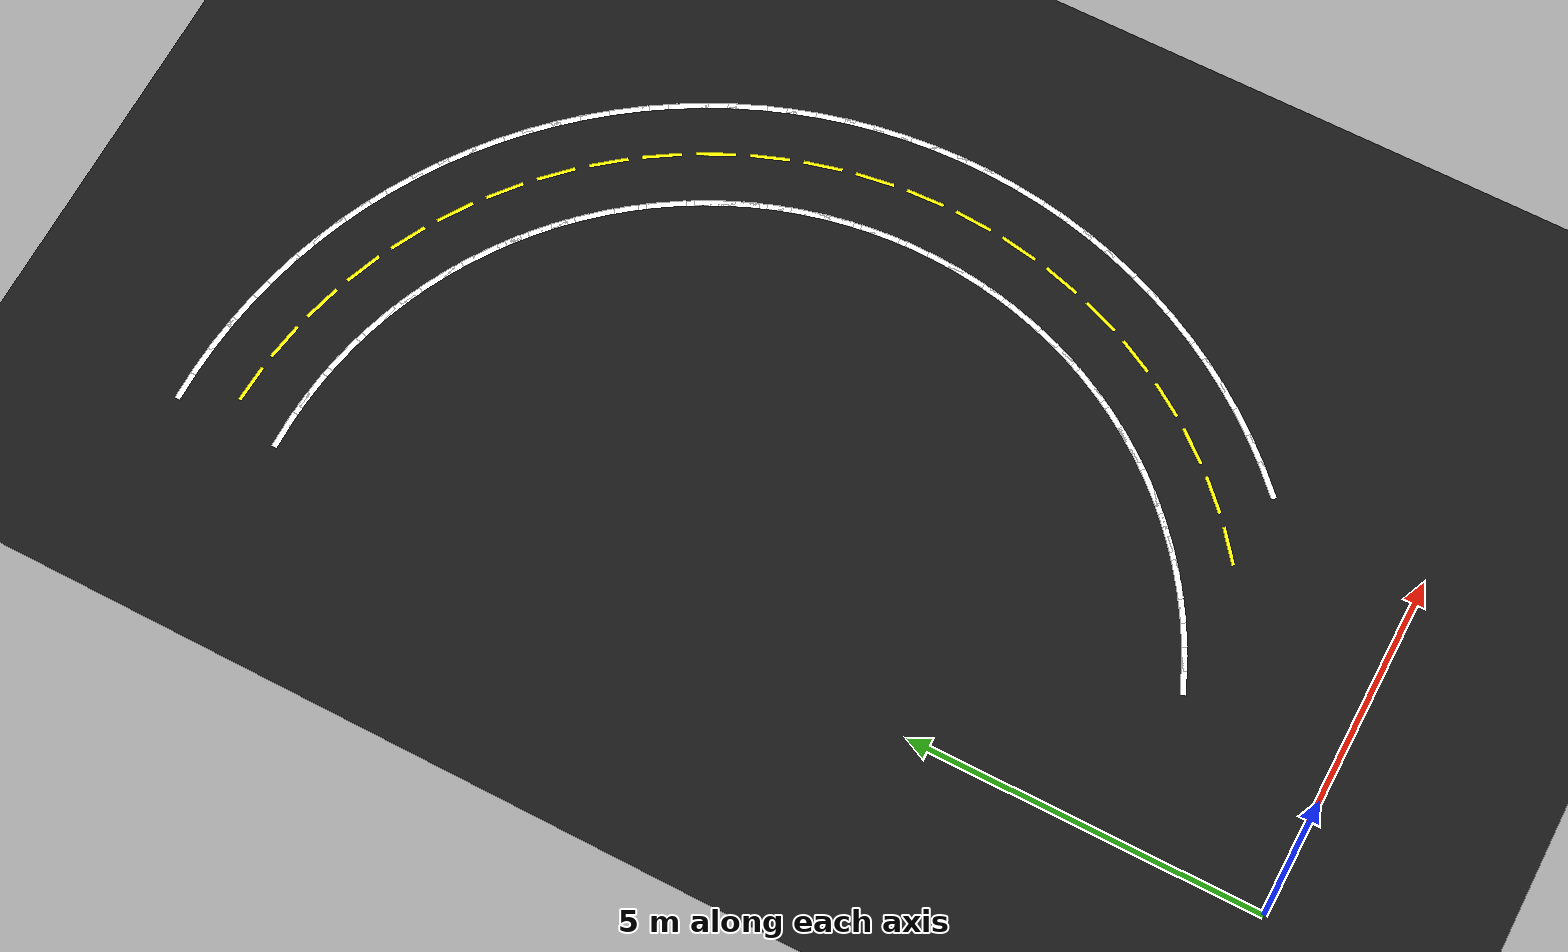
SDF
<sdf version="1.6">
 <world name="lane_world">
  <model name="ground">
   <static>true</static>
   <link name="link">
    <visual name="v">
     <geometry><plane><normal>0 0 1</normal><size>80 80</size></plane></geometry>
     <material><ambient>0.10 0.10 0.10 1</ambient><diffuse>0.10 0.10 0.10 1</diffuse></material>
    </visual>
    <collision name="c"><geometry><plane><normal>0 0 1</normal><size>80 80</size></plane></geometry></collision>
   </link>
  </model>
  <model name="seg_0019">
   <static>true</static>
   <pose>2.4108 2.2337 0.002 0 0 -2.7456</pose>
   <link name="link">
    <visual name="v">
     <geometry><box><size>0.550 0.080 0.0020</size></box></geometry>
     <material><ambient>1 1 1 1</ambient><diffuse>1 1 1 1</diffuse></material>
    </visual>
   </link>
  </model>
  <model name="seg_0021">
   <static>true</static>
   <pose>2.7118 2.3689 0.002 0 0 -2.6928</pose>
   <link name="link">
    <visual name="v">
     <geometry><box><size>0.550 0.080 0.0020</size></box></geometry>
     <material><ambient>1 1 1 1</ambient><diffuse>1 1 1 1</diffuse></material>
    </visual>
   </link>
  </model>
  <model name="seg_0024">
   <static>true</static>
   <pose>3.0052 2.5199 0.002 0 0 -2.6400</pose>
   <link name="link">
    <visual name="v">
     <geometry><box><size>0.550 0.080 0.0020</size></box></geometry>
     <material><ambient>1 1 1 1</ambient><diffuse>1 1 1 1</diffuse></material>
    </visual>
   </link>
  </model>
  <model name="seg_0026">
   <static>true</static>
   <pose>3.2902 2.6861 0.002 0 0 -2.5872</pose>
   <link name="link">
    <visual name="v">
     <geometry><box><size>0.550 0.080 0.0020</size></box></geometry>
     <material><ambient>1 1 1 1</ambient><diffuse>1 1 1 1</diffuse></material>
    </visual>
   </link>
  </model>
  <model name="seg_0029">
   <static>true</static>
   <pose>3.5661 2.8672 0.002 0 0 -2.5344</pose>
   <link name="link">
    <visual name="v">
     <geometry><box><size>0.550 0.080 0.0020</size></box></geometry>
     <material><ambient>1 1 1 1</ambient><diffuse>1 1 1 1</diffuse></material>
    </visual>
   </link>
  </model>
  <model name="seg_0031">
   <static>true</static>
   <pose>3.8320 3.0625 0.002 0 0 -2.4816</pose>
   <link name="link">
    <visual name="v">
     <geometry><box><size>0.550 0.080 0.0020</size></box></geometry>
     <material><ambient>1 1 1 1</ambient><diffuse>1 1 1 1</diffuse></material>
    </visual>
   </link>
  </model>
  <model name="seg_0032">
   <static>true</static>
   <pose>4.2918 2.4700 0.002 0 0 -2.4816</pose>
   <link name="link">
    <visual name="v">
     <geometry><box><size>0.550 0.05 0.0020</size></box></geometry>
     <material><ambient>1 1 0 1</ambient><diffuse>1 1 0 1</diffuse></material>
    </visual>
   </link>
  </model>
  <model name="seg_0034">
   <static>true</static>
   <pose>4.0872 3.2717 0.002 0 0 -2.4288</pose>
   <link name="link">
    <visual name="v">
     <geometry><box><size>0.550 0.080 0.0020</size></box></geometry>
     <material><ambient>1 1 1 1</ambient><diffuse>1 1 1 1</diffuse></material>
    </visual>
   </link>
  </model>
  <model name="seg_0035">
   <static>true</static>
   <pose>5.3705 2.4125 0.002 0 0 -2.3760</pose>
   <link name="link">
    <visual name="v">
     <geometry><box><size>0.550 0.080 0.0020</size></box></geometry>
     <material><ambient>1 1 1 1</ambient><diffuse>1 1 1 1</diffuse></material>
    </visual>
   </link>
  </model>
  <model name="seg_0036">
   <static>true</static>
   <pose>4.3311 3.4940 0.002 0 0 -2.3760</pose>
   <link name="link">
    <visual name="v">
     <geometry><box><size>0.550 0.080 0.0020</size></box></geometry>
     <material><ambient>1 1 1 1</ambient><diffuse>1 1 1 1</diffuse></material>
    </visual>
   </link>
  </model>
  <model name="seg_0037">
   <static>true</static>
   <pose>4.8508 2.9532 0.002 0 0 -2.3760</pose>
   <link name="link">
    <visual name="v">
     <geometry><box><size>0.550 0.05 0.0020</size></box></geometry>
     <material><ambient>1 1 0 1</ambient><diffuse>1 1 0 1</diffuse></material>
    </visual>
   </link>
  </model>
  <model name="seg_0038">
   <static>true</static>
   <pose>5.6579 2.7037 0.002 0 0 -2.3232</pose>
   <link name="link">
    <visual name="v">
     <geometry><box><size>0.550 0.080 0.0020</size></box></geometry>
     <material><ambient>1 1 1 1</ambient><diffuse>1 1 1 1</diffuse></material>
    </visual>
   </link>
  </model>
  <model name="seg_0039">
   <static>true</static>
   <pose>4.5628 3.7288 0.002 0 0 -2.3232</pose>
   <link name="link">
    <visual name="v">
     <geometry><box><size>0.550 0.080 0.0020</size></box></geometry>
     <material><ambient>1 1 1 1</ambient><diffuse>1 1 1 1</diffuse></material>
    </visual>
   </link>
  </model>
  <model name="seg_0040">
   <static>true</static>
   <pose>5.9295 3.0097 0.002 0 0 -2.2704</pose>
   <link name="link">
    <visual name="v">
     <geometry><box><size>0.550 0.080 0.0020</size></box></geometry>
     <material><ambient>1 1 1 1</ambient><diffuse>1 1 1 1</diffuse></material>
    </visual>
   </link>
  </model>
  <model name="seg_0041">
   <static>true</static>
   <pose>4.7819 3.9756 0.002 0 0 -2.2704</pose>
   <link name="link">
    <visual name="v">
     <geometry><box><size>0.550 0.080 0.0020</size></box></geometry>
     <material><ambient>1 1 1 1</ambient><diffuse>1 1 1 1</diffuse></material>
    </visual>
   </link>
  </model>
  <model name="seg_0042">
   <static>true</static>
   <pose>5.3557 3.4926 0.002 0 0 -2.2704</pose>
   <link name="link">
    <visual name="v">
     <geometry><box><size>0.550 0.05 0.0020</size></box></geometry>
     <material><ambient>1 1 0 1</ambient><diffuse>1 1 0 1</diffuse></material>
    </visual>
   </link>
  </model>
  <model name="seg_0043">
   <static>true</static>
   <pose>6.1846 3.3296 0.002 0 0 -2.2176</pose>
   <link name="link">
    <visual name="v">
     <geometry><box><size>0.550 0.080 0.0020</size></box></geometry>
     <material><ambient>1 1 1 1</ambient><diffuse>1 1 1 1</diffuse></material>
    </visual>
   </link>
  </model>
  <model name="seg_0044">
   <static>true</static>
   <pose>4.9876 4.2335 0.002 0 0 -2.2176</pose>
   <link name="link">
    <visual name="v">
     <geometry><box><size>0.550 0.080 0.0020</size></box></geometry>
     <material><ambient>1 1 1 1</ambient><diffuse>1 1 1 1</diffuse></material>
    </visual>
   </link>
  </model>
  <model name="seg_0045">
   <static>true</static>
   <pose>6.4225 3.6625 0.002 0 0 -2.1648</pose>
   <link name="link">
    <visual name="v">
     <geometry><box><size>0.550 0.080 0.0020</size></box></geometry>
     <material><ambient>1 1 1 1</ambient><diffuse>1 1 1 1</diffuse></material>
    </visual>
   </link>
  </model>
  <model name="seg_0046">
   <static>true</static>
   <pose>5.1794 4.5020 0.002 0 0 -2.1648</pose>
   <link name="link">
    <visual name="v">
     <geometry><box><size>0.550 0.080 0.0020</size></box></geometry>
     <material><ambient>1 1 1 1</ambient><diffuse>1 1 1 1</diffuse></material>
    </visual>
   </link>
  </model>
  <model name="seg_0047">
   <static>true</static>
   <pose>5.8010 4.0822 0.002 0 0 -2.1648</pose>
   <link name="link">
    <visual name="v">
     <geometry><box><size>0.550 0.05 0.0020</size></box></geometry>
     <material><ambient>1 1 0 1</ambient><diffuse>1 1 0 1</diffuse></material>
    </visual>
   </link>
  </model>
  <model name="seg_0048">
   <static>true</static>
   <pose>6.6425 4.0075 0.002 0 0 -2.1120</pose>
   <link name="link">
    <visual name="v">
     <geometry><box><size>0.550 0.080 0.0020</size></box></geometry>
     <material><ambient>1 1 1 1</ambient><diffuse>1 1 1 1</diffuse></material>
    </visual>
   </link>
  </model>
  <model name="seg_0049">
   <static>true</static>
   <pose>5.3568 4.7802 0.002 0 0 -2.1120</pose>
   <link name="link">
    <visual name="v">
     <geometry><box><size>0.550 0.080 0.0020</size></box></geometry>
     <material><ambient>1 1 1 1</ambient><diffuse>1 1 1 1</diffuse></material>
    </visual>
   </link>
  </model>
  <model name="seg_0050">
   <static>true</static>
   <pose>6.8439 4.3636 0.002 0 0 -2.0592</pose>
   <link name="link">
    <visual name="v">
     <geometry><box><size>0.550 0.080 0.0020</size></box></geometry>
     <material><ambient>1 1 1 1</ambient><diffuse>1 1 1 1</diffuse></material>
    </visual>
   </link>
  </model>
  <model name="seg_0051">
   <static>true</static>
   <pose>5.5193 5.0674 0.002 0 0 -2.0592</pose>
   <link name="link">
    <visual name="v">
     <geometry><box><size>0.550 0.080 0.0020</size></box></geometry>
     <material><ambient>1 1 1 1</ambient><diffuse>1 1 1 1</diffuse></material>
    </visual>
   </link>
  </model>
  <model name="seg_0052">
   <static>true</static>
   <pose>6.1816 4.7155 0.002 0 0 -2.0592</pose>
   <link name="link">
    <visual name="v">
     <geometry><box><size>0.550 0.05 0.0020</size></box></geometry>
     <material><ambient>1 1 0 1</ambient><diffuse>1 1 0 1</diffuse></material>
    </visual>
   </link>
  </model>
  <model name="seg_0053">
   <static>true</static>
   <pose>7.0263 4.7299 0.002 0 0 -2.0064</pose>
   <link name="link">
    <visual name="v">
     <geometry><box><size>0.550 0.080 0.0020</size></box></geometry>
     <material><ambient>1 1 1 1</ambient><diffuse>1 1 1 1</diffuse></material>
    </visual>
   </link>
  </model>
  <model name="seg_0054">
   <static>true</static>
   <pose>5.6664 5.3628 0.002 0 0 -2.0064</pose>
   <link name="link">
    <visual name="v">
     <geometry><box><size>0.550 0.080 0.0020</size></box></geometry>
     <material><ambient>1 1 1 1</ambient><diffuse>1 1 1 1</diffuse></material>
    </visual>
   </link>
  </model>
  <model name="seg_0055">
   <static>true</static>
   <pose>7.1891 5.1052 0.002 0 0 -1.9536</pose>
   <link name="link">
    <visual name="v">
     <geometry><box><size>0.550 0.080 0.0020</size></box></geometry>
     <material><ambient>1 1 1 1</ambient><diffuse>1 1 1 1</diffuse></material>
    </visual>
   </link>
  </model>
  <model name="seg_0056">
   <static>true</static>
   <pose>5.7976 5.6655 0.002 0 0 -1.9536</pose>
   <link name="link">
    <visual name="v">
     <geometry><box><size>0.550 0.080 0.0020</size></box></geometry>
     <material><ambient>1 1 1 1</ambient><diffuse>1 1 1 1</diffuse></material>
    </visual>
   </link>
  </model>
  <model name="seg_0057">
   <static>true</static>
   <pose>6.4934 5.3854 0.002 0 0 -1.9536</pose>
   <link name="link">
    <visual name="v">
     <geometry><box><size>0.550 0.05 0.0020</size></box></geometry>
     <material><ambient>1 1 0 1</ambient><diffuse>1 1 0 1</diffuse></material>
    </visual>
   </link>
  </model>
  <model name="seg_0058">
   <static>true</static>
   <pose>7.3318 5.4887 0.002 0 0 -1.9008</pose>
   <link name="link">
    <visual name="v">
     <geometry><box><size>0.550 0.080 0.0020</size></box></geometry>
     <material><ambient>1 1 1 1</ambient><diffuse>1 1 1 1</diffuse></material>
    </visual>
   </link>
  </model>
  <model name="seg_0059">
   <static>true</static>
   <pose>5.9128 5.9747 0.002 0 0 -1.9008</pose>
   <link name="link">
    <visual name="v">
     <geometry><box><size>0.550 0.080 0.0020</size></box></geometry>
     <material><ambient>1 1 1 1</ambient><diffuse>1 1 1 1</diffuse></material>
    </visual>
   </link>
  </model>
  <model name="seg_0060">
   <static>true</static>
   <pose>7.4541 5.8791 0.002 0 0 -1.8480</pose>
   <link name="link">
    <visual name="v">
     <geometry><box><size>0.550 0.080 0.0020</size></box></geometry>
     <material><ambient>1 1 1 1</ambient><diffuse>1 1 1 1</diffuse></material>
    </visual>
   </link>
  </model>
  <model name="seg_0061">
   <static>true</static>
   <pose>6.0114 6.2896 0.002 0 0 -1.8480</pose>
   <link name="link">
    <visual name="v">
     <geometry><box><size>0.550 0.080 0.0020</size></box></geometry>
     <material><ambient>1 1 1 1</ambient><diffuse>1 1 1 1</diffuse></material>
    </visual>
   </link>
  </model>
  <model name="seg_0062">
   <static>true</static>
   <pose>6.7328 6.0844 0.002 0 0 -1.8480</pose>
   <link name="link">
    <visual name="v">
     <geometry><box><size>0.550 0.05 0.0020</size></box></geometry>
     <material><ambient>1 1 0 1</ambient><diffuse>1 1 0 1</diffuse></material>
    </visual>
   </link>
  </model>
  <model name="seg_0063">
   <static>true</static>
   <pose>7.5557 6.2755 0.002 0 0 -1.7952</pose>
   <link name="link">
    <visual name="v">
     <geometry><box><size>0.550 0.080 0.0020</size></box></geometry>
     <material><ambient>1 1 1 1</ambient><diffuse>1 1 1 1</diffuse></material>
    </visual>
   </link>
  </model>
  <model name="seg_0064">
   <static>true</static>
   <pose>6.0933 6.6092 0.002 0 0 -1.7952</pose>
   <link name="link">
    <visual name="v">
     <geometry><box><size>0.550 0.080 0.0020</size></box></geometry>
     <material><ambient>1 1 1 1</ambient><diffuse>1 1 1 1</diffuse></material>
    </visual>
   </link>
  </model>
  <model name="seg_0065">
   <static>true</static>
   <pose>7.6362 6.6766 0.002 0 0 -1.7424</pose>
   <link name="link">
    <visual name="v">
     <geometry><box><size>0.550 0.080 0.0020</size></box></geometry>
     <material><ambient>1 1 1 1</ambient><diffuse>1 1 1 1</diffuse></material>
    </visual>
   </link>
  </model>
  <model name="seg_0066">
   <static>true</static>
   <pose>6.1582 6.9328 0.002 0 0 -1.7424</pose>
   <link name="link">
    <visual name="v">
     <geometry><box><size>0.550 0.080 0.0020</size></box></geometry>
     <material><ambient>1 1 1 1</ambient><diffuse>1 1 1 1</diffuse></material>
    </visual>
   </link>
  </model>
  <model name="seg_0067">
   <static>true</static>
   <pose>6.8972 6.8047 0.002 0 0 -1.7424</pose>
   <link name="link">
    <visual name="v">
     <geometry><box><size>0.550 0.05 0.0020</size></box></geometry>
     <material><ambient>1 1 0 1</ambient><diffuse>1 1 0 1</diffuse></material>
    </visual>
   </link>
  </model>
  <model name="seg_0068">
   <static>true</static>
   <pose>7.6954 7.0815 0.002 0 0 -1.6896</pose>
   <link name="link">
    <visual name="v">
     <geometry><box><size>0.550 0.080 0.0020</size></box></geometry>
     <material><ambient>1 1 1 1</ambient><diffuse>1 1 1 1</diffuse></material>
    </visual>
   </link>
  </model>
  <model name="seg_0069">
   <static>true</static>
   <pose>6.2059 7.2592 0.002 0 0 -1.6896</pose>
   <link name="link">
    <visual name="v">
     <geometry><box><size>0.550 0.080 0.0020</size></box></geometry>
     <material><ambient>1 1 1 1</ambient><diffuse>1 1 1 1</diffuse></material>
    </visual>
   </link>
  </model>
  <model name="seg_0070">
   <static>true</static>
   <pose>7.7331 7.4889 0.002 0 0 -1.6368</pose>
   <link name="link">
    <visual name="v">
     <geometry><box><size>0.550 0.080 0.0020</size></box></geometry>
     <material><ambient>1 1 1 1</ambient><diffuse>1 1 1 1</diffuse></material>
    </visual>
   </link>
  </model>
  <model name="seg_0071">
   <static>true</static>
   <pose>6.2364 7.5878 0.002 0 0 -1.6368</pose>
   <link name="link">
    <visual name="v">
     <geometry><box><size>0.550 0.080 0.0020</size></box></geometry>
     <material><ambient>1 1 1 1</ambient><diffuse>1 1 1 1</diffuse></material>
    </visual>
   </link>
  </model>
  <model name="seg_0072">
   <static>true</static>
   <pose>6.9848 7.5383 0.002 0 0 -1.6368</pose>
   <link name="link">
    <visual name="v">
     <geometry><box><size>0.550 0.05 0.0020</size></box></geometry>
     <material><ambient>1 1 0 1</ambient><diffuse>1 1 0 1</diffuse></material>
    </visual>
   </link>
  </model>
  <model name="seg_0073">
   <static>true</static>
   <pose>7.7493 7.8977 0.002 0 0 -1.5840</pose>
   <link name="link">
    <visual name="v">
     <geometry><box><size>0.550 0.080 0.0020</size></box></geometry>
     <material><ambient>1 1 1 1</ambient><diffuse>1 1 1 1</diffuse></material>
    </visual>
   </link>
  </model>
  <model name="seg_0074">
   <static>true</static>
   <pose>6.2495 7.9175 0.002 0 0 -1.5840</pose>
   <link name="link">
    <visual name="v">
     <geometry><box><size>0.550 0.080 0.0020</size></box></geometry>
     <material><ambient>1 1 1 1</ambient><diffuse>1 1 1 1</diffuse></material>
    </visual>
   </link>
  </model>
  <model name="seg_0075">
   <static>true</static>
   <pose>7.7439 8.3068 0.002 0 0 -1.5312</pose>
   <link name="link">
    <visual name="v">
     <geometry><box><size>0.550 0.080 0.0020</size></box></geometry>
     <material><ambient>1 1 1 1</ambient><diffuse>1 1 1 1</diffuse></material>
    </visual>
   </link>
  </model>
  <model name="seg_0076">
   <static>true</static>
   <pose>6.2451 8.2474 0.002 0 0 -1.5312</pose>
   <link name="link">
    <visual name="v">
     <geometry><box><size>0.550 0.080 0.0020</size></box></geometry>
     <material><ambient>1 1 1 1</ambient><diffuse>1 1 1 1</diffuse></material>
    </visual>
   </link>
  </model>
  <model name="seg_0077">
   <static>true</static>
   <pose>6.9945 8.2771 0.002 0 0 -1.5312</pose>
   <link name="link">
    <visual name="v">
     <geometry><box><size>0.550 0.05 0.0020</size></box></geometry>
     <material><ambient>1 1 0 1</ambient><diffuse>1 1 0 1</diffuse></material>
    </visual>
   </link>
  </model>
  <model name="seg_0078">
   <static>true</static>
   <pose>7.7169 8.7151 0.002 0 0 -1.4784</pose>
   <link name="link">
    <visual name="v">
     <geometry><box><size>0.550 0.080 0.0020</size></box></geometry>
     <material><ambient>1 1 1 1</ambient><diffuse>1 1 1 1</diffuse></material>
    </visual>
   </link>
  </model>
  <model name="seg_0079">
   <static>true</static>
   <pose>6.2233 8.5767 0.002 0 0 -1.4784</pose>
   <link name="link">
    <visual name="v">
     <geometry><box><size>0.550 0.080 0.0020</size></box></geometry>
     <material><ambient>1 1 1 1</ambient><diffuse>1 1 1 1</diffuse></material>
    </visual>
   </link>
  </model>
  <model name="seg_0080">
   <static>true</static>
   <pose>7.6684 9.1213 0.002 0 0 -1.4256</pose>
   <link name="link">
    <visual name="v">
     <geometry><box><size>0.550 0.080 0.0020</size></box></geometry>
     <material><ambient>1 1 1 1</ambient><diffuse>1 1 1 1</diffuse></material>
    </visual>
   </link>
  </model>
  <model name="seg_0081">
   <static>true</static>
   <pose>6.1842 8.9043 0.002 0 0 -1.4256</pose>
   <link name="link">
    <visual name="v">
     <geometry><box><size>0.550 0.080 0.0020</size></box></geometry>
     <material><ambient>1 1 1 1</ambient><diffuse>1 1 1 1</diffuse></material>
    </visual>
   </link>
  </model>
  <model name="seg_0082">
   <static>true</static>
   <pose>6.9263 9.0128 0.002 0 0 -1.4256</pose>
   <link name="link">
    <visual name="v">
     <geometry><box><size>0.550 0.05 0.0020</size></box></geometry>
     <material><ambient>1 1 0 1</ambient><diffuse>1 1 0 1</diffuse></material>
    </visual>
   </link>
  </model>
  <model name="seg_0083">
   <static>true</static>
   <pose>7.5986 9.5245 0.002 0 0 -1.3728</pose>
   <link name="link">
    <visual name="v">
     <geometry><box><size>0.550 0.080 0.0020</size></box></geometry>
     <material><ambient>1 1 1 1</ambient><diffuse>1 1 1 1</diffuse></material>
    </visual>
   </link>
  </model>
  <model name="seg_0084">
   <static>true</static>
   <pose>6.1279 9.2294 0.002 0 0 -1.3728</pose>
   <link name="link">
    <visual name="v">
     <geometry><box><size>0.550 0.080 0.0020</size></box></geometry>
     <material><ambient>1 1 1 1</ambient><diffuse>1 1 1 1</diffuse></material>
    </visual>
   </link>
  </model>
  <model name="seg_0085">
   <static>true</static>
   <pose>7.5075 9.9234 0.002 0 0 -1.3200</pose>
   <link name="link">
    <visual name="v">
     <geometry><box><size>0.550 0.080 0.0020</size></box></geometry>
     <material><ambient>1 1 1 1</ambient><diffuse>1 1 1 1</diffuse></material>
    </visual>
   </link>
  </model>
  <model name="seg_0086">
   <static>true</static>
   <pose>6.0545 9.5511 0.002 0 0 -1.3200</pose>
   <link name="link">
    <visual name="v">
     <geometry><box><size>0.550 0.080 0.0020</size></box></geometry>
     <material><ambient>1 1 1 1</ambient><diffuse>1 1 1 1</diffuse></material>
    </visual>
   </link>
  </model>
  <model name="seg_0087">
   <static>true</static>
   <pose>6.7810 9.7372 0.002 0 0 -1.3200</pose>
   <link name="link">
    <visual name="v">
     <geometry><box><size>0.550 0.05 0.0020</size></box></geometry>
     <material><ambient>1 1 0 1</ambient><diffuse>1 1 0 1</diffuse></material>
    </visual>
   </link>
  </model>
  <model name="seg_0088">
   <static>true</static>
   <pose>7.3956 10.3169 0.002 0 0 -1.2672</pose>
   <link name="link">
    <visual name="v">
     <geometry><box><size>0.550 0.080 0.0020</size></box></geometry>
     <material><ambient>1 1 1 1</ambient><diffuse>1 1 1 1</diffuse></material>
    </visual>
   </link>
  </model>
  <model name="seg_0089">
   <static>true</static>
   <pose>5.9642 9.8685 0.002 0 0 -1.2672</pose>
   <link name="link">
    <visual name="v">
     <geometry><box><size>0.550 0.080 0.0020</size></box></geometry>
     <material><ambient>1 1 1 1</ambient><diffuse>1 1 1 1</diffuse></material>
    </visual>
   </link>
  </model>
  <model name="seg_0090">
   <static>true</static>
   <pose>7.2630 10.7040 0.002 0 0 -1.2144</pose>
   <link name="link">
    <visual name="v">
     <geometry><box><size>0.550 0.080 0.0020</size></box></geometry>
     <material><ambient>1 1 1 1</ambient><diffuse>1 1 1 1</diffuse></material>
    </visual>
   </link>
  </model>
  <model name="seg_0091">
   <static>true</static>
   <pose>5.8572 10.1806 0.002 0 0 -1.2144</pose>
   <link name="link">
    <visual name="v">
     <geometry><box><size>0.550 0.080 0.0020</size></box></geometry>
     <material><ambient>1 1 1 1</ambient><diffuse>1 1 1 1</diffuse></material>
    </visual>
   </link>
  </model>
  <model name="seg_0092">
   <static>true</static>
   <pose>6.5601 10.4423 0.002 0 0 -1.2144</pose>
   <link name="link">
    <visual name="v">
     <geometry><box><size>0.550 0.05 0.0020</size></box></geometry>
     <material><ambient>1 1 0 1</ambient><diffuse>1 1 0 1</diffuse></material>
    </visual>
   </link>
  </model>
  <model name="seg_0093">
   <static>true</static>
   <pose>7.1102 11.0835 0.002 0 0 -1.1616</pose>
   <link name="link">
    <visual name="v">
     <geometry><box><size>0.550 0.080 0.0020</size></box></geometry>
     <material><ambient>1 1 1 1</ambient><diffuse>1 1 1 1</diffuse></material>
    </visual>
   </link>
  </model>
  <model name="seg_0094">
   <static>true</static>
   <pose>5.7340 10.4867 0.002 0 0 -1.1616</pose>
   <link name="link">
    <visual name="v">
     <geometry><box><size>0.550 0.080 0.0020</size></box></geometry>
     <material><ambient>1 1 1 1</ambient><diffuse>1 1 1 1</diffuse></material>
    </visual>
   </link>
  </model>
  <model name="seg_0095">
   <static>true</static>
   <pose>6.9375 11.4545 0.002 0 0 -1.1088</pose>
   <link name="link">
    <visual name="v">
     <geometry><box><size>0.550 0.080 0.0020</size></box></geometry>
     <material><ambient>1 1 1 1</ambient><diffuse>1 1 1 1</diffuse></material>
    </visual>
   </link>
  </model>
  <model name="seg_0096">
   <static>true</static>
   <pose>5.5948 10.7859 0.002 0 0 -1.1088</pose>
   <link name="link">
    <visual name="v">
     <geometry><box><size>0.550 0.080 0.0020</size></box></geometry>
     <material><ambient>1 1 1 1</ambient><diffuse>1 1 1 1</diffuse></material>
    </visual>
   </link>
  </model>
  <model name="seg_0097">
   <static>true</static>
   <pose>6.2661 11.1202 0.002 0 0 -1.1088</pose>
   <link name="link">
    <visual name="v">
     <geometry><box><size>0.550 0.05 0.0020</size></box></geometry>
     <material><ambient>1 1 0 1</ambient><diffuse>1 1 0 1</diffuse></material>
    </visual>
   </link>
  </model>
  <model name="seg_0098">
   <static>true</static>
   <pose>6.7455 11.8158 0.002 0 0 -1.0560</pose>
   <link name="link">
    <visual name="v">
     <geometry><box><size>0.550 0.080 0.0020</size></box></geometry>
     <material><ambient>1 1 1 1</ambient><diffuse>1 1 1 1</diffuse></material>
    </visual>
   </link>
  </model>
  <model name="seg_0099">
   <static>true</static>
   <pose>5.4399 11.0772 0.002 0 0 -1.0560</pose>
   <link name="link">
    <visual name="v">
     <geometry><box><size>0.550 0.080 0.0020</size></box></geometry>
     <material><ambient>1 1 1 1</ambient><diffuse>1 1 1 1</diffuse></material>
    </visual>
   </link>
  </model>
  <model name="seg_0100">
   <static>true</static>
   <pose>6.5348 12.1665 0.002 0 0 -1.0032</pose>
   <link name="link">
    <visual name="v">
     <geometry><box><size>0.550 0.080 0.0020</size></box></geometry>
     <material><ambient>1 1 1 1</ambient><diffuse>1 1 1 1</diffuse></material>
    </visual>
   </link>
  </model>
  <model name="seg_0101">
   <static>true</static>
   <pose>5.2700 11.3601 0.002 0 0 -1.0032</pose>
   <link name="link">
    <visual name="v">
     <geometry><box><size>0.550 0.080 0.0020</size></box></geometry>
     <material><ambient>1 1 1 1</ambient><diffuse>1 1 1 1</diffuse></material>
    </visual>
   </link>
  </model>
  <model name="seg_0102">
   <static>true</static>
   <pose>5.9024 11.7633 0.002 0 0 -1.0032</pose>
   <link name="link">
    <visual name="v">
     <geometry><box><size>0.550 0.05 0.0020</size></box></geometry>
     <material><ambient>1 1 0 1</ambient><diffuse>1 1 0 1</diffuse></material>
    </visual>
   </link>
  </model>
  <model name="seg_0103">
   <static>true</static>
   <pose>6.3058 12.5055 0.002 0 0 -0.9504</pose>
   <link name="link">
    <visual name="v">
     <geometry><box><size>0.550 0.080 0.0020</size></box></geometry>
     <material><ambient>1 1 1 1</ambient><diffuse>1 1 1 1</diffuse></material>
    </visual>
   </link>
  </model>
  <model name="seg_0104">
   <static>true</static>
   <pose>5.0853 11.6335 0.002 0 0 -0.9504</pose>
   <link name="link">
    <visual name="v">
     <geometry><box><size>0.550 0.080 0.0020</size></box></geometry>
     <material><ambient>1 1 1 1</ambient><diffuse>1 1 1 1</diffuse></material>
    </visual>
   </link>
  </model>
  <model name="seg_0105">
   <static>true</static>
   <pose>6.0592 12.8320 0.002 0 0 -0.8976</pose>
   <link name="link">
    <visual name="v">
     <geometry><box><size>0.550 0.080 0.0020</size></box></geometry>
     <material><ambient>1 1 1 1</ambient><diffuse>1 1 1 1</diffuse></material>
    </visual>
   </link>
  </model>
  <model name="seg_0106">
   <static>true</static>
   <pose>4.8864 11.8968 0.002 0 0 -0.8976</pose>
   <link name="link">
    <visual name="v">
     <geometry><box><size>0.550 0.080 0.0020</size></box></geometry>
     <material><ambient>1 1 1 1</ambient><diffuse>1 1 1 1</diffuse></material>
    </visual>
   </link>
  </model>
  <model name="seg_0107">
   <static>true</static>
   <pose>5.4728 12.3644 0.002 0 0 -0.8976</pose>
   <link name="link">
    <visual name="v">
     <geometry><box><size>0.550 0.05 0.0020</size></box></geometry>
     <material><ambient>1 1 0 1</ambient><diffuse>1 1 0 1</diffuse></material>
    </visual>
   </link>
  </model>
  <model name="seg_0108">
   <static>true</static>
   <pose>5.7957 13.1451 0.002 0 0 -0.8448</pose>
   <link name="link">
    <visual name="v">
     <geometry><box><size>0.550 0.080 0.0020</size></box></geometry>
     <material><ambient>1 1 1 1</ambient><diffuse>1 1 1 1</diffuse></material>
    </visual>
   </link>
  </model>
  <model name="seg_0109">
   <static>true</static>
   <pose>4.6740 12.1493 0.002 0 0 -0.8448</pose>
   <link name="link">
    <visual name="v">
     <geometry><box><size>0.550 0.080 0.0020</size></box></geometry>
     <material><ambient>1 1 1 1</ambient><diffuse>1 1 1 1</diffuse></material>
    </visual>
   </link>
  </model>
  <model name="seg_0110">
   <static>true</static>
   <pose>5.5161 13.4438 0.002 0 0 -0.7920</pose>
   <link name="link">
    <visual name="v">
     <geometry><box><size>0.550 0.080 0.0020</size></box></geometry>
     <material><ambient>1 1 1 1</ambient><diffuse>1 1 1 1</diffuse></material>
    </visual>
   </link>
  </model>
  <model name="seg_0111">
   <static>true</static>
   <pose>4.4485 12.3902 0.002 0 0 -0.7920</pose>
   <link name="link">
    <visual name="v">
     <geometry><box><size>0.550 0.080 0.0020</size></box></geometry>
     <material><ambient>1 1 1 1</ambient><diffuse>1 1 1 1</diffuse></material>
    </visual>
   </link>
  </model>
  <model name="seg_0112">
   <static>true</static>
   <pose>4.9823 12.9170 0.002 0 0 -0.7920</pose>
   <link name="link">
    <visual name="v">
     <geometry><box><size>0.550 0.05 0.0020</size></box></geometry>
     <material><ambient>1 1 0 1</ambient><diffuse>1 1 0 1</diffuse></material>
    </visual>
   </link>
  </model>
  <model name="seg_0113">
   <static>true</static>
   <pose>5.2211 13.7273 0.002 0 0 -0.7392</pose>
   <link name="link">
    <visual name="v">
     <geometry><box><size>0.550 0.080 0.0020</size></box></geometry>
     <material><ambient>1 1 1 1</ambient><diffuse>1 1 1 1</diffuse></material>
    </visual>
   </link>
  </model>
  <model name="seg_0114">
   <static>true</static>
   <pose>4.2106 12.6188 0.002 0 0 -0.7392</pose>
   <link name="link">
    <visual name="v">
     <geometry><box><size>0.550 0.080 0.0020</size></box></geometry>
     <material><ambient>1 1 1 1</ambient><diffuse>1 1 1 1</diffuse></material>
    </visual>
   </link>
  </model>
  <model name="seg_0115">
   <static>true</static>
   <pose>4.9116 13.9949 0.002 0 0 -0.6864</pose>
   <link name="link">
    <visual name="v">
     <geometry><box><size>0.550 0.080 0.0020</size></box></geometry>
     <material><ambient>1 1 1 1</ambient><diffuse>1 1 1 1</diffuse></material>
    </visual>
   </link>
  </model>
  <model name="seg_0116">
   <static>true</static>
   <pose>3.9610 12.8346 0.002 0 0 -0.6864</pose>
   <link name="link">
    <visual name="v">
     <geometry><box><size>0.550 0.080 0.0020</size></box></geometry>
     <material><ambient>1 1 1 1</ambient><diffuse>1 1 1 1</diffuse></material>
    </visual>
   </link>
  </model>
  <model name="seg_0117">
   <static>true</static>
   <pose>4.4363 13.4147 0.002 0 0 -0.6864</pose>
   <link name="link">
    <visual name="v">
     <geometry><box><size>0.550 0.05 0.0020</size></box></geometry>
     <material><ambient>1 1 0 1</ambient><diffuse>1 1 0 1</diffuse></material>
    </visual>
   </link>
  </model>
  <model name="seg_0118">
   <static>true</static>
   <pose>4.5884 14.2457 0.002 0 0 -0.6336</pose>
   <link name="link">
    <visual name="v">
     <geometry><box><size>0.550 0.080 0.0020</size></box></geometry>
     <material><ambient>1 1 1 1</ambient><diffuse>1 1 1 1</diffuse></material>
    </visual>
   </link>
  </model>
  <model name="seg_0119">
   <static>true</static>
   <pose>3.7003 13.0369 0.002 0 0 -0.6336</pose>
   <link name="link">
    <visual name="v">
     <geometry><box><size>0.550 0.080 0.0020</size></box></geometry>
     <material><ambient>1 1 1 1</ambient><diffuse>1 1 1 1</diffuse></material>
    </visual>
   </link>
  </model>
  <model name="seg_0120">
   <static>true</static>
   <pose>4.2524 14.4792 0.002 0 0 -0.5808</pose>
   <link name="link">
    <visual name="v">
     <geometry><box><size>0.550 0.080 0.0020</size></box></geometry>
     <material><ambient>1 1 1 1</ambient><diffuse>1 1 1 1</diffuse></material>
    </visual>
   </link>
  </model>
  <model name="seg_0121">
   <static>true</static>
   <pose>3.4293 13.2252 0.002 0 0 -0.5808</pose>
   <link name="link">
    <visual name="v">
     <geometry><box><size>0.550 0.080 0.0020</size></box></geometry>
     <material><ambient>1 1 1 1</ambient><diffuse>1 1 1 1</diffuse></material>
    </visual>
   </link>
  </model>
  <model name="seg_0122">
   <static>true</static>
   <pose>3.8408 13.8522 0.002 0 0 -0.5808</pose>
   <link name="link">
    <visual name="v">
     <geometry><box><size>0.550 0.05 0.0020</size></box></geometry>
     <material><ambient>1 1 0 1</ambient><diffuse>1 1 0 1</diffuse></material>
    </visual>
   </link>
  </model>
  <model name="seg_0123">
   <static>true</static>
   <pose>3.9045 14.6946 0.002 0 0 -0.5280</pose>
   <link name="link">
    <visual name="v">
     <geometry><box><size>0.550 0.080 0.0020</size></box></geometry>
     <material><ambient>1 1 1 1</ambient><diffuse>1 1 1 1</diffuse></material>
    </visual>
   </link>
  </model>
  <model name="seg_0124">
   <static>true</static>
   <pose>3.1488 13.3989 0.002 0 0 -0.5280</pose>
   <link name="link">
    <visual name="v">
     <geometry><box><size>0.550 0.080 0.0020</size></box></geometry>
     <material><ambient>1 1 1 1</ambient><diffuse>1 1 1 1</diffuse></material>
    </visual>
   </link>
  </model>
  <model name="seg_0125">
   <static>true</static>
   <pose>3.5457 14.8913 0.002 0 0 -0.4752</pose>
   <link name="link">
    <visual name="v">
     <geometry><box><size>0.550 0.080 0.0020</size></box></geometry>
     <material><ambient>1 1 1 1</ambient><diffuse>1 1 1 1</diffuse></material>
    </visual>
   </link>
  </model>
  <model name="seg_0126">
   <static>true</static>
   <pose>2.8595 13.5575 0.002 0 0 -0.4752</pose>
   <link name="link">
    <visual name="v">
     <geometry><box><size>0.550 0.080 0.0020</size></box></geometry>
     <material><ambient>1 1 1 1</ambient><diffuse>1 1 1 1</diffuse></material>
    </visual>
   </link>
  </model>
  <model name="seg_0127">
   <static>true</static>
   <pose>3.2026 14.2244 0.002 0 0 -0.4752</pose>
   <link name="link">
    <visual name="v">
     <geometry><box><size>0.550 0.05 0.0020</size></box></geometry>
     <material><ambient>1 1 0 1</ambient><diffuse>1 1 0 1</diffuse></material>
    </visual>
   </link>
  </model>
  <model name="seg_0128">
   <static>true</static>
   <pose>3.1771 15.0688 0.002 0 0 -0.4224</pose>
   <link name="link">
    <visual name="v">
     <geometry><box><size>0.550 0.080 0.0020</size></box></geometry>
     <material><ambient>1 1 1 1</ambient><diffuse>1 1 1 1</diffuse></material>
    </visual>
   </link>
  </model>
  <model name="seg_0129">
   <static>true</static>
   <pose>2.5622 13.7007 0.002 0 0 -0.4224</pose>
   <link name="link">
    <visual name="v">
     <geometry><box><size>0.550 0.080 0.0020</size></box></geometry>
     <material><ambient>1 1 1 1</ambient><diffuse>1 1 1 1</diffuse></material>
    </visual>
   </link>
  </model>
  <model name="seg_0130">
   <static>true</static>
   <pose>2.7996 15.2267 0.002 0 0 -0.3696</pose>
   <link name="link">
    <visual name="v">
     <geometry><box><size>0.550 0.080 0.0020</size></box></geometry>
     <material><ambient>1 1 1 1</ambient><diffuse>1 1 1 1</diffuse></material>
    </visual>
   </link>
  </model>
  <model name="seg_0131">
   <static>true</static>
   <pose>2.2578 13.8280 0.002 0 0 -0.3696</pose>
   <link name="link">
    <visual name="v">
     <geometry><box><size>0.550 0.080 0.0020</size></box></geometry>
     <material><ambient>1 1 1 1</ambient><diffuse>1 1 1 1</diffuse></material>
    </visual>
   </link>
  </model>
  <model name="seg_0132">
   <static>true</static>
   <pose>2.5287 14.5273 0.002 0 0 -0.3696</pose>
   <link name="link">
    <visual name="v">
     <geometry><box><size>0.550 0.05 0.0020</size></box></geometry>
     <material><ambient>1 1 0 1</ambient><diffuse>1 1 0 1</diffuse></material>
    </visual>
   </link>
  </model>
  <model name="seg_0133">
   <static>true</static>
   <pose>2.4143 15.3643 0.002 0 0 -0.3168</pose>
   <link name="link">
    <visual name="v">
     <geometry><box><size>0.550 0.080 0.0020</size></box></geometry>
     <material><ambient>1 1 1 1</ambient><diffuse>1 1 1 1</diffuse></material>
    </visual>
   </link>
  </model>
  <model name="seg_0134">
   <static>true</static>
   <pose>1.9470 13.9390 0.002 0 0 -0.3168</pose>
   <link name="link">
    <visual name="v">
     <geometry><box><size>0.550 0.080 0.0020</size></box></geometry>
     <material><ambient>1 1 1 1</ambient><diffuse>1 1 1 1</diffuse></material>
    </visual>
   </link>
  </model>
  <model name="seg_0135">
   <static>true</static>
   <pose>2.0223 15.4815 0.002 0 0 -0.2640</pose>
   <link name="link">
    <visual name="v">
     <geometry><box><size>0.550 0.080 0.0020</size></box></geometry>
     <material><ambient>1 1 1 1</ambient><diffuse>1 1 1 1</diffuse></material>
    </visual>
   </link>
  </model>
  <model name="seg_0136">
   <static>true</static>
   <pose>1.6309 14.0335 0.002 0 0 -0.2640</pose>
   <link name="link">
    <visual name="v">
     <geometry><box><size>0.550 0.080 0.0020</size></box></geometry>
     <material><ambient>1 1 1 1</ambient><diffuse>1 1 1 1</diffuse></material>
    </visual>
   </link>
  </model>
  <model name="seg_0137">
   <static>true</static>
   <pose>1.8266 14.7575 0.002 0 0 -0.2640</pose>
   <link name="link">
    <visual name="v">
     <geometry><box><size>0.550 0.05 0.0020</size></box></geometry>
     <material><ambient>1 1 0 1</ambient><diffuse>1 1 0 1</diffuse></material>
    </visual>
   </link>
  </model>
  <model name="seg_0138">
   <static>true</static>
   <pose>1.6247 15.5778 0.002 0 0 -0.2112</pose>
   <link name="link">
    <visual name="v">
     <geometry><box><size>0.550 0.080 0.0020</size></box></geometry>
     <material><ambient>1 1 1 1</ambient><diffuse>1 1 1 1</diffuse></material>
    </visual>
   </link>
  </model>
  <model name="seg_0139">
   <static>true</static>
   <pose>1.3102 14.1111 0.002 0 0 -0.2112</pose>
   <link name="link">
    <visual name="v">
     <geometry><box><size>0.550 0.080 0.0020</size></box></geometry>
     <material><ambient>1 1 1 1</ambient><diffuse>1 1 1 1</diffuse></material>
    </visual>
   </link>
  </model>
  <model name="seg_0140">
   <static>true</static>
   <pose>1.2225 15.6530 0.002 0 0 -0.1584</pose>
   <link name="link">
    <visual name="v">
     <geometry><box><size>0.550 0.080 0.0020</size></box></geometry>
     <material><ambient>1 1 1 1</ambient><diffuse>1 1 1 1</diffuse></material>
    </visual>
   </link>
  </model>
  <model name="seg_0141">
   <static>true</static>
   <pose>0.9859 14.1718 0.002 0 0 -0.1584</pose>
   <link name="link">
    <visual name="v">
     <geometry><box><size>0.550 0.080 0.0020</size></box></geometry>
     <material><ambient>1 1 1 1</ambient><diffuse>1 1 1 1</diffuse></material>
    </visual>
   </link>
  </model>
  <model name="seg_0142">
   <static>true</static>
   <pose>1.1042 14.9124 0.002 0 0 -0.1584</pose>
   <link name="link">
    <visual name="v">
     <geometry><box><size>0.550 0.05 0.0020</size></box></geometry>
     <material><ambient>1 1 0 1</ambient><diffuse>1 1 0 1</diffuse></material>
    </visual>
   </link>
  </model>
  <model name="seg_0143">
   <static>true</static>
   <pose>0.8169 15.7068 0.002 0 0 -0.1056</pose>
   <link name="link">
    <visual name="v">
     <geometry><box><size>0.550 0.080 0.0020</size></box></geometry>
     <material><ambient>1 1 1 1</ambient><diffuse>1 1 1 1</diffuse></material>
    </visual>
   </link>
  </model>
  <model name="seg_0144">
   <static>true</static>
   <pose>0.6588 14.2152 0.002 0 0 -0.1056</pose>
   <link name="link">
    <visual name="v">
     <geometry><box><size>0.550 0.080 0.0020</size></box></geometry>
     <material><ambient>1 1 1 1</ambient><diffuse>1 1 1 1</diffuse></material>
    </visual>
   </link>
  </model>
  <model name="seg_0145">
   <static>true</static>
   <pose>0.4090 15.7392 0.002 0 0 -0.0528</pose>
   <link name="link">
    <visual name="v">
     <geometry><box><size>0.550 0.080 0.0020</size></box></geometry>
     <material><ambient>1 1 1 1</ambient><diffuse>1 1 1 1</diffuse></material>
    </visual>
   </link>
  </model>
  <model name="seg_0146">
   <static>true</static>
   <pose>0.3298 14.2413 0.002 0 0 -0.0528</pose>
   <link name="link">
    <visual name="v">
     <geometry><box><size>0.550 0.080 0.0020</size></box></geometry>
     <material><ambient>1 1 1 1</ambient><diffuse>1 1 1 1</diffuse></material>
    </visual>
   </link>
  </model>
  <model name="seg_0147">
   <static>true</static>
   <pose>0.3694 14.9902 0.002 0 0 -0.0528</pose>
   <link name="link">
    <visual name="v">
     <geometry><box><size>0.550 0.05 0.0020</size></box></geometry>
     <material><ambient>1 1 0 1</ambient><diffuse>1 1 0 1</diffuse></material>
    </visual>
   </link>
  </model>
  <model name="seg_0148">
   <static>true</static>
   <pose>0.0000 15.7500 0.002 0 0 -0.0000</pose>
   <link name="link">
    <visual name="v">
     <geometry><box><size>0.550 0.080 0.0020</size></box></geometry>
     <material><ambient>1 1 1 1</ambient><diffuse>1 1 1 1</diffuse></material>
    </visual>
   </link>
  </model>
  <model name="seg_0149">
   <static>true</static>
   <pose>0.0000 14.2500 0.002 0 0 -0.0000</pose>
   <link name="link">
    <visual name="v">
     <geometry><box><size>0.550 0.080 0.0020</size></box></geometry>
     <material><ambient>1 1 1 1</ambient><diffuse>1 1 1 1</diffuse></material>
    </visual>
   </link>
  </model>
 </world>
</sdf>
